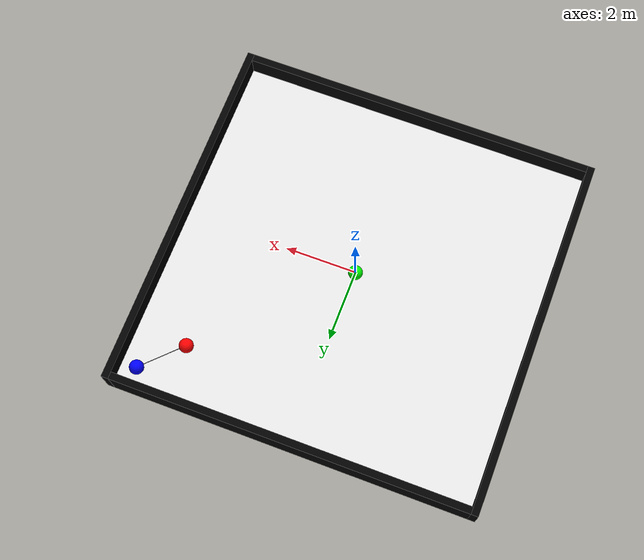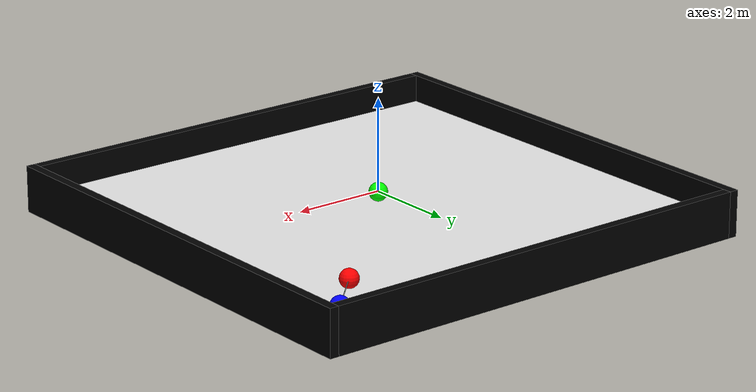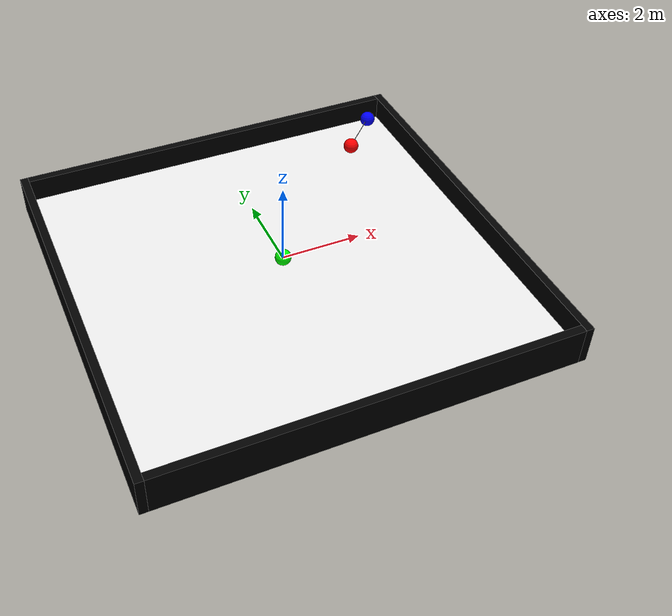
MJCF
<mujoco>
    <option gravity="0 0 0" timestep="0.005"/>
<default>
<geom rgba="0 0 0 1"/>
</default>
    <worldbody>
 	<light diffuse=".2 .2 .2" pos="0 0 20" dir="0 0 -1" mode="track"/>
	<body>
	  <geom name='floor' pos='0 0 -0.4' size='5 5 .1' mass="10000" type='box' condim='3' rgba=".9 .9 .9 1"/>
	</body>
	<body>
	  <geom name='wall1' pos='-5.1 0 -0.2' size='.1 5.1 .5' mass="10000" type='box' condim='3'/>
	</body>
	<body>
	  <geom name='wall2' pos='5.1 0 -0.2' size='.1 5.1 .5' mass="10000" type='box' condim='3'/>
	</body>
	<body>
	  <geom name='wall3' pos='0 -5 -0.2' size='5 .1 .5' mass="10000" type='box' condim='3'/>
	</body>
	<body>
	  <geom name='wall4' pos='0 5 -0.2' size='5 .1 .5' mass="10000" type='box' condim='3'/>
	</body>
        <body name="predator" pos="3.5 3.5 0">
            <joint axis="1 0 0" damping="0" name="predator0" pos="0 0 0" type="slide"/>
            <joint axis="0 1 0" damping="0" name="predator1" pos="0 0 0" type="slide"/>
            <geom type="sphere" size="0.2" mass="10" rgba="1 0 0 1"/>
    	    <site name="end1" pos="0 0 0" type="sphere" size="0.01"/>
        </body>

 	<body name="prey" pos="0 0 0">
            <joint axis="1 0 0" damping="0" name="prey0" pos="0 0 0" type="slide"/>
            <joint axis="0 1 0" damping="0" name="prey1" pos="0 0 0" type="slide"/>
            <geom type="sphere" size="0.2" mass="8" rgba="0 1 0 1"/>
        </body>

	<body name="dragger" pos="4.5 4.5 0">
            <joint axis="1 0 0" damping="0" name="dragger0" pos="0 0 0" type="slide"/>
            <joint axis="0 1 0" damping="0" name="dragger1" pos="0 0 0" type="slide"/>
            <geom type="sphere" size="0.2" mass="75" rgba="0 0 1 1"/>
 	    <site name="end2" pos="0 0 0" type="sphere" size="0.01"/>
        </body>
	<body pos="4 4 0">
		<joint axis="1 0 0" damping="0" name="middlex" pos="0 0 0" type="slide"/>
                <joint axis="0 1 0" damping="0" name="middley" pos="0 0 0" type="slide"/>
		<geom type="sphere" size="0.01" mass="1" rgba="0 .9 0 1"/>
  		<site name="middle" pos="0 0 0" type="sphere" size="0.01"/>
	</body>
    </worldbody>

    <tendon>
        <spatial limited="true" range="0 .75" stiffness="10" damping=".6" width="0.01">
            <site site="end1"/>
            <site site="middle"/>
        </spatial>
    </tendon>
    <tendon>
        <spatial limited="true" range="0 .75" stiffness="10" damping=".6" width="0.01">
            <site site="middle"/>
            <site site="end2"/>
        </spatial>
    </tendon>

    <actuator>
        <motor gear="1" joint="predator0"/>
        <motor gear="1" joint="predator1"/>

        <motor gear="1" joint="prey0"/>
        <motor gear="1" joint="prey1"/>

        <motor gear="1" joint="dragger0"/>
        <motor gear="1" joint="dragger1"/>
    </actuator>
</mujoco>.
